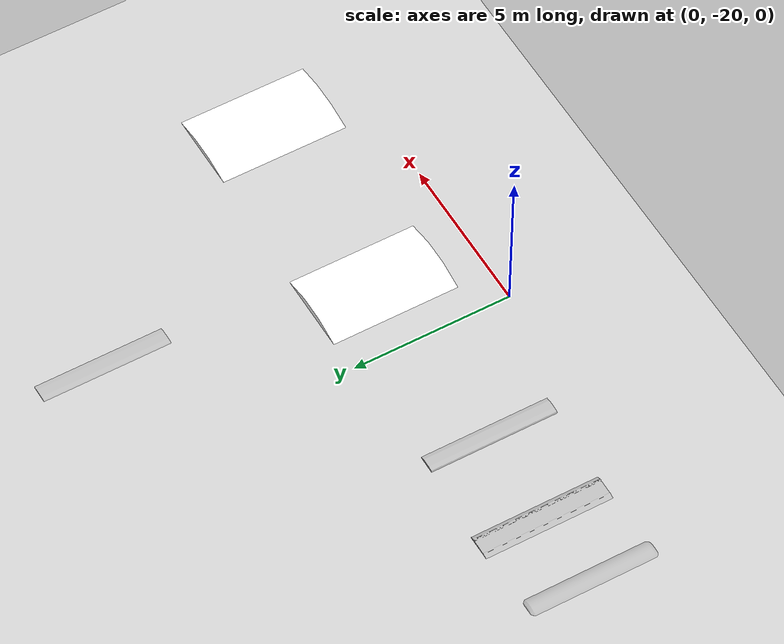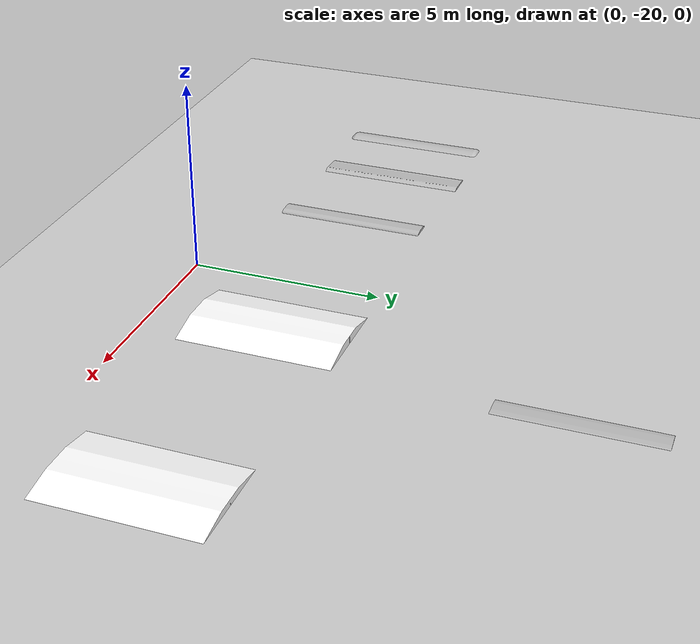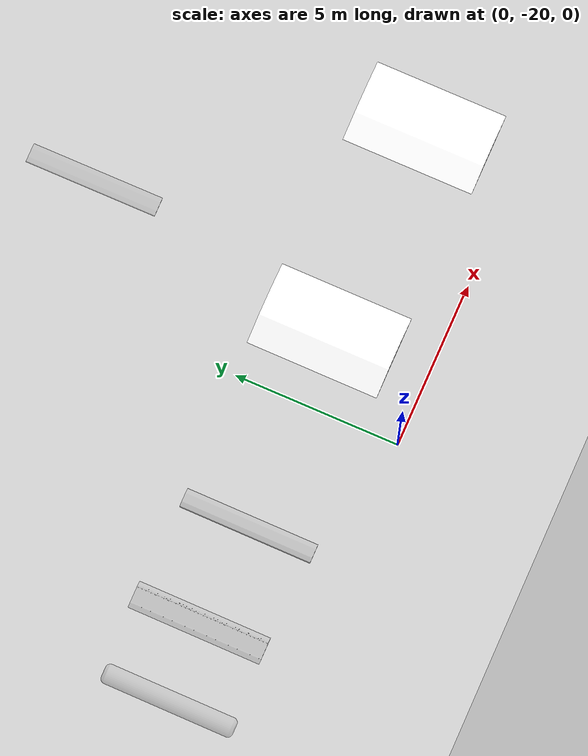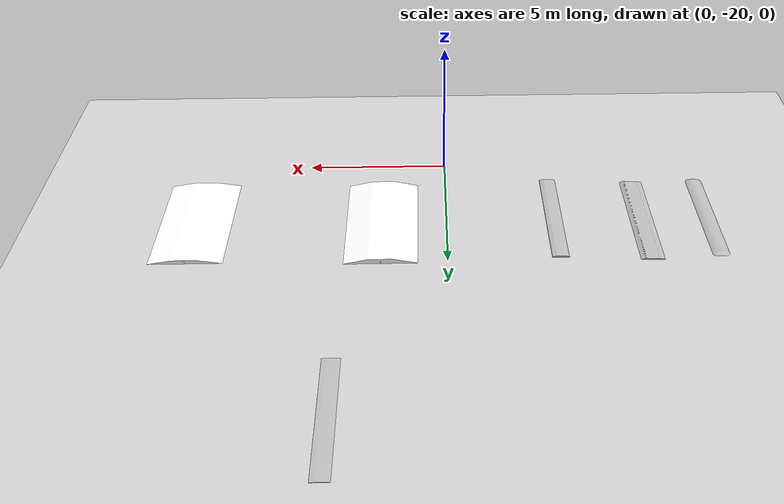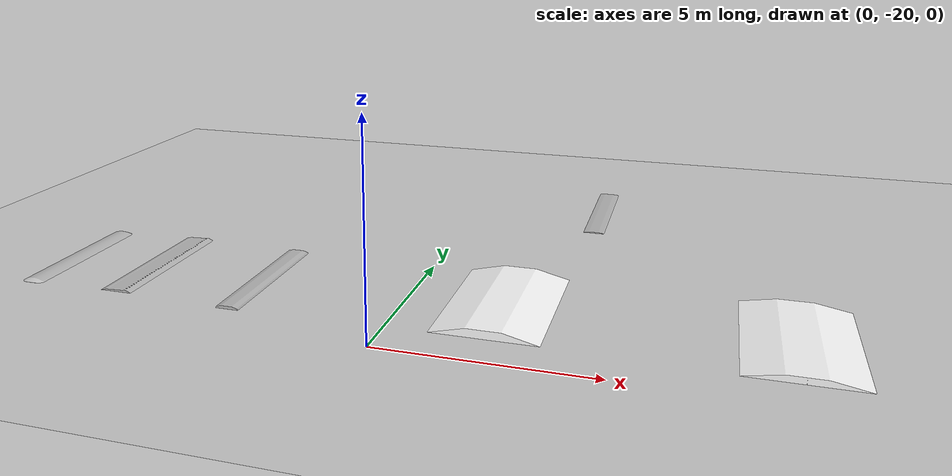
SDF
<sdf version="1.7">
 <world name="default">
  <model name="ground_plane">
   <static>1</static>
   <link name="link">
    <collision name="collision">
     <geometry><plane><normal>0 0 1</normal><size>100 100</size></plane></geometry>
     <surface><friction><ode><mu>100</mu><mu2>50</mu2></ode></friction></surface>
    </collision>
    <visual name="visual">
     <cast_shadows>0</cast_shadows>
     <geometry><plane><normal>0 0 1</normal><size>100 100</size></plane></geometry>
     <material>
      <script><uri>file://media/materials/scripts/gazebo.material</uri><name>Gazebo/Grey</name></script>
     </material>
    </visual>
   </link>
  </model>
  <model name="speed_bump_1_short">
   <static>1</static>
   <link name="link">
    <collision name="collision">
     <geometry><mesh><uri>model://speed_bump_1_short//bump_2_060.dae</uri></mesh></geometry>
     <surface><friction><ode><mu>0.9</mu><mu2>0.6</mu2></ode></friction></surface>
    </collision>
    <visual name="visual">
     <geometry><mesh><uri>model://speed_bump_1_short//bump_2_060.dae</uri></mesh></geometry>
    </visual>
   </link>
   <pose>3.85214 -11.0358 0 0 -0 1.57405</pose>
  </model>
  <model name="ramp_1">
   <static>1</static>
   <link name="link">
    <collision name="collision">
     <geometry><mesh><uri>model://ramp_1//ramp_015.dae</uri></mesh></geometry>
     <surface><friction><ode><mu>0.9</mu><mu2>0.6</mu2></ode></friction></surface>
    </collision>
    <visual name="visual"><geometry><mesh><uri>model://ramp_1//ramp_015.dae</uri></mesh></geometry></visual>
   </link>
   <pose>7.49951 -19.0303 0 0 -0 0</pose>
  </model>
  <model name="ramp_2">
   <static>1</static>
   <link name="link">
    <collision name="collision">
     <geometry><mesh><uri>model://ramp_2//ramp_020.dae</uri></mesh></geometry>
     <surface><friction><ode><mu>0.9</mu><mu2>0.6</mu2></ode></friction></surface>
    </collision>
    <visual name="visual"><geometry><mesh><uri>model://ramp_2//ramp_020.dae</uri></mesh></geometry></visual>
   </link>
   <pose>0.998253 -18.9064 0 0 -0 0</pose>
  </model>
  <model name="speed_bump_1">
   <static>1</static>
   <link name="link">
    <collision name="collision">
     <geometry><mesh><uri>model://speed_bump_1//bump_1.dae</uri></mesh></geometry>
     <surface><friction><ode><mu>0.9</mu><mu2>0.6</mu2></ode></friction></surface>
    </collision>
    <visual name="visual"><geometry><mesh><uri>model://speed_bump_1//bump_1.dae</uri></mesh></geometry></visual>
   </link>
   <pose>-3.49793 -19.0735 0 0 -0 1.57</pose>
  </model>
  <model name="speed_bump_2">
   <static>1</static>
   <link name="link">
    <collision name="collision">
     <geometry><mesh><uri>model://speed_bump_2//bump_2.dae</uri></mesh></geometry>
     <surface><friction><ode><mu>0.9</mu><mu2>0.6</mu2></ode></friction></surface>
    </collision>
    <visual name="visual"><geometry><mesh><uri>model://speed_bump_2//bump_2.dae</uri></mesh></geometry></visual>
   </link>
   <pose>-6.4547 -18.9186 0 0 -0 1.57</pose>
  </model>
  <model name="speed_bump_3">
   <static>1</static>
   <link name="link">
    <collision name="collision">
     <geometry><mesh><uri>model://speed_bump_3//bump_3.dae</uri></mesh></geometry>
     <surface><friction><ode><mu>0.9</mu><mu2>0.6</mu2></ode></friction></surface>
    </collision>
    <visual name="visual"><geometry><mesh><uri>model://speed_bump_3//bump_3.dae</uri></mesh></geometry></visual>
   </link>
   <pose>-8.91199 -19.0344 0 0 -0 1.57</pose>
  </model>
 </world>
</sdf>
